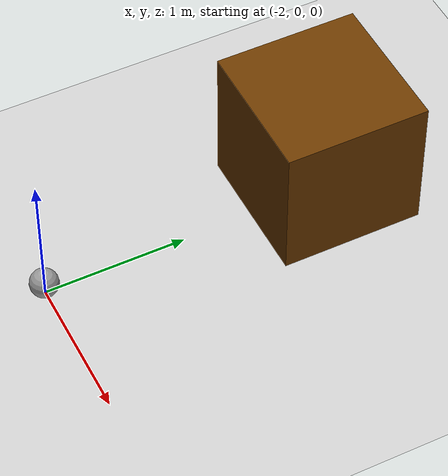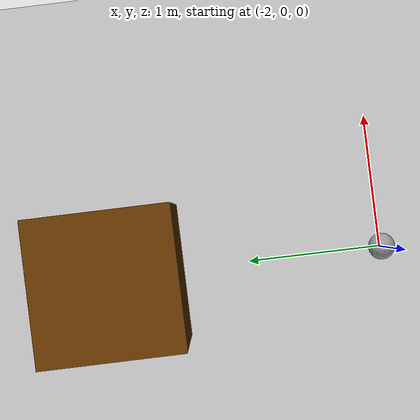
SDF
<?xml version="1.0" ?>
<sdf version="1.5">
    <world name="default">

        <physics type="ode">
        <max_step_size>0.001</max_step_size>
        <real_time_factor>1</real_time_factor>
        <real_time_update_rate>1000</real_time_update_rate>
        <gravity>0 0 -9.8</gravity>
            <ode>
                <solver>
                <type>quick</type>
                <iters>50</iters>
                <sor>1.3</sor>
                </solver>
                <constraints>
                <cfm>0.0</cfm>
                <erp>0.2</erp>
                <contact_max_correcting_vel>10.0</contact_max_correcting_vel>
                <contact_surface_layer>0.001</contact_surface_layer>
                </constraints>
            </ode>
        </physics>

        <!-- A global light source -->
        <include>
            <uri>model://sun</uri>
        </include>

        <!-- Ground plane with friction-->
        <model name="ground_plane">
        <static>true</static>
        <link name="link">
          <collision name="collision">
            <geometry>
              <plane>
                <normal>0 0 1</normal>
                <size>100 100</size>
              </plane>
            </geometry>
            <surface>
              <friction>
                <ode>
                  <mu>0.01</mu>
                  <mu2>0.01</mu2>
                </ode>
              </friction>
            </surface>
          </collision>
          <visual name="visual">
            <cast_shadows>false</cast_shadows>
            <geometry>
              <plane>
                <normal>0 0 1</normal>
                <size>100 100</size>
              </plane>
            </geometry>
            <material>
                <script>
                    <uri>file://media/materials/scripts/gazebo.material</uri>
                    <name>Gazebo/Grey</name>
                </script>
            </material>
          </visual>
            </link>
          </model>

        <!-- environment blocks, obstacles or stairs -->
        <model name="static_environment">
        <static>true</static>
        <pose>-2 2 0.5 0 0 0</pose> <!-- Position relative to the world base -->
            <link name="static_box">
                <collision name="static_box_collision">
                    <geometry>
                        <box>
                            <size>1 1 1</size>
                        </box>
                    </geometry>
                </collision>
                <visual name="static_box_visual">
                    <geometry>
                        <box>
                            <size>1 1 1</size>
                        </box>
                    </geometry>
                    <material>
                        <ambient>0.2 0.2 0.2 1.0</ambient>
                        <diffuse>.421 0.225 0.0 1.0</diffuse>
                    </material>
                </visual>
            </link>
        </model>

        <!-- White ball model -->
        <model name="white_ball">
        <pose>-2 0 0.1 0 0 0</pose>  <!-- Position relative to the world base -->
            <link name="static_box">
                <collision name="white_ball_collision">
                    <geometry>
                        <sphere>
                            <radius>0.1</radius>
                        </sphere>
                    </geometry>
                </collision>
                <visual name="white_ball_visual">
                    <geometry>
                        <sphere>
                            <radius>0.1</radius>
                        </sphere>
                    </geometry>
                    <material>
                        <lighting>1</lighting>
                        <script>
                            <uri>file://media/materials/scripts/gazebo.material</uri>
                            <name>Gazebo/Grey</name>
                        </script>
                        <shader type='pixel'>
                            <normal_map>__default__</normal_map>
                        </shader>
                        <ambient>1 1 1 1</ambient>
                        <diffuse>1 1 1 1</diffuse>
                        <specular>1 1 1 1</specular>
                        <emissive>1 1 1 1</emissive>
                    </material>
                </visual>
            </link>
        </model>

    </world>
</sdf>
